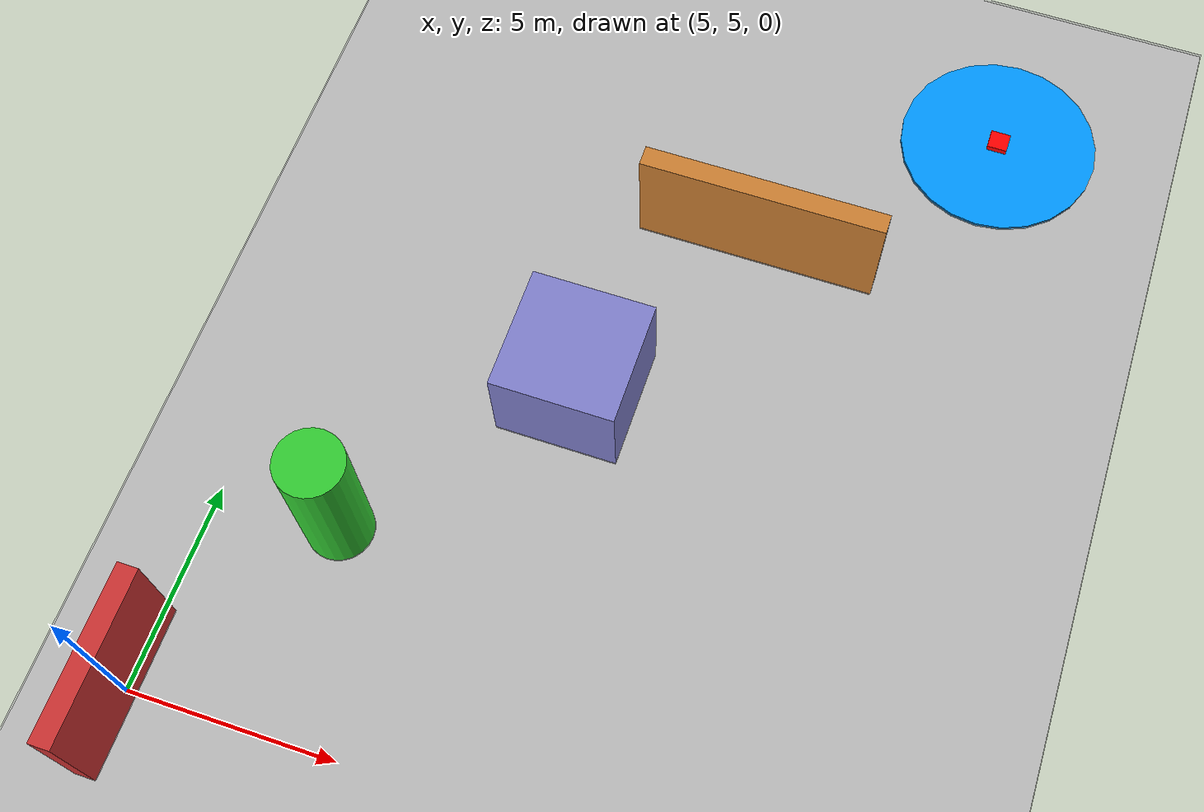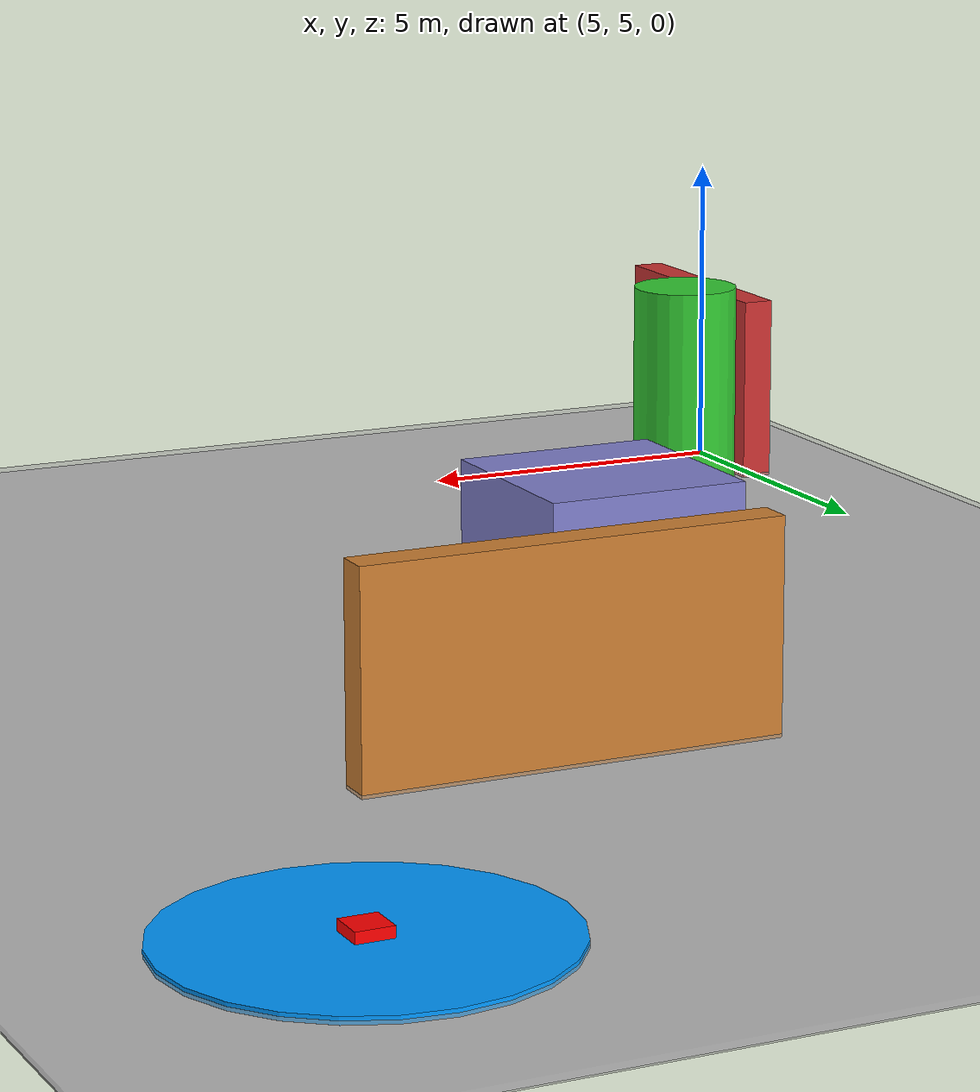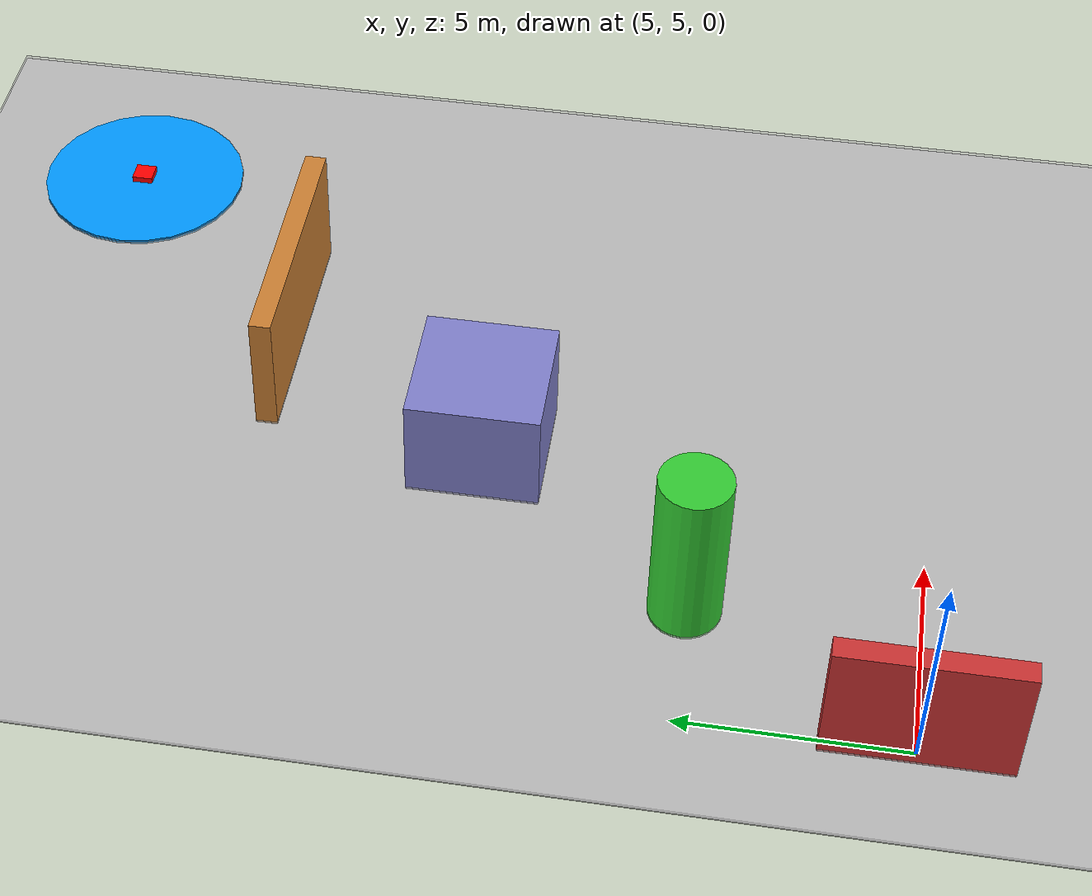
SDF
<?xml version="1.0" ?>
<sdf version="1.9">
  <world name="obstacle_world">

    <!-- Physics -->
    <physics name="1ms" type="ignored">
      <max_step_size>0.001</max_step_size>
      <real_time_factor>1.0</real_time_factor>
    </physics>

    <!-- Plugins -->
    <plugin filename="gz-sim-physics-system" name="gz::sim::systems::Physics"/>
    <plugin filename="gz-sim-user-commands-system" name="gz::sim::systems::UserCommands"/>
    <plugin filename="gz-sim-scene-broadcaster-system" name="gz::sim::systems::SceneBroadcaster"/>
    <plugin filename="gz-sim-imu-system" name="gz::sim::systems::Imu"/>
    <plugin filename="gz-sim-sensors-system" name="gz::sim::systems::Sensors">
      <render_engine>ogre2</render_engine>
    </plugin>

    <!-- Sun -->
    <light type="directional" name="sun">
      <cast_shadows>true</cast_shadows>
      <pose>0 0 10 0 0 0</pose>
      <diffuse>0.8 0.8 0.8 1</diffuse>
      <specular>0.2 0.2 0.2 1</specular>
      <attenuation>
        <range>1000</range>
        <constant>0.9</constant>
        <linear>0.01</linear>
        <quadratic>0.001</quadratic>
      </attenuation>
      <direction>-0.5 0.1 -0.9</direction>
    </light>

    <!-- Ground plane -->
    <model name="ground_plane">
      <static>true</static>
      <link name="link">
        <collision name="collision">
          <geometry>
            <plane>
              <normal>0 0 1</normal>
              <size>100 100</size>
            </plane>
          </geometry>
        </collision>
        <visual name="visual">
          <geometry>
            <plane>
              <normal>0 0 1</normal>
              <size>100 100</size>
            </plane>
          </geometry>
          <material>
            <ambient>0.8 0.8 0.8 1</ambient>
            <diffuse>0.8 0.8 0.8 1</diffuse>
            <specular>0.8 0.8 0.8 1</specular>
          </material>
        </visual>
      </link>
    </model>

    <!-- Grid visual -->
    <model name="grid">
      <static>true</static>
      <link name="link">
        <visual name="visual">
          <cast_shadows>false</cast_shadows>
          <geometry>
            <plane>
              <normal>0 0 1</normal>
              <size>100 100</size>
            </plane>
          </geometry>
          <material>
            <ambient>0.7 0.7 0.7 0.5</ambient>
            <diffuse>0.7 0.7 0.7 0.5</diffuse>
          </material>
        </visual>
      </link>
    </model>

    <!-- VẬT CẢN -->

    <!-- Vật cản 1: Tường đỏ -->
    <model name="wall_1">
      <pose>5 5 1.5 0 0 0</pose>
      <static>true</static>
      <link name="link">
        <collision name="collision">
          <geometry>
            <box>
              <size>0.5 4 3</size>
            </box>
          </geometry>
        </collision>
        <visual name="visual">
          <geometry>
            <box>
              <size>0.5 4 3</size>
            </box>
          </geometry>
          <material>
            <ambient>0.8 0.2 0.2 1</ambient>
            <diffuse>0.8 0.2 0.2 1</diffuse>
            <specular>0.5 0.5 0.5 1</specular>
          </material>
        </visual>
      </link>
    </model>

    <!-- Vật cản 2: Cột xanh lá -->
    <model name="pole_1">
      <pose>8 10 2 0 0 0</pose>
      <static>true</static>
      <link name="link">
        <collision name="collision">
          <geometry>
            <cylinder>
              <radius>0.8</radius>
              <length>4</length>
            </cylinder>
          </geometry>
        </collision>
        <visual name="visual">
          <geometry>
            <cylinder>
              <radius>0.8</radius>
              <length>4</length>
            </cylinder>
          </geometry>
          <material>
            <ambient>0.2 0.8 0.2 1</ambient>
            <diffuse>0.2 0.8 0.2 1</diffuse>
            <specular>0.5 0.5 0.5 1</specular>
          </material>
        </visual>
      </link>
    </model>

    <!-- Vật cản 3: Hộp xanh dương -->
    <model name="box_1">
      <pose>12 15 1.25 0 0 0</pose>
      <static>true</static>
      <link name="link">
        <collision name="collision">
          <geometry>
            <box>
              <size>3 3 2.5</size>
            </box>
          </geometry>
        </collision>
        <visual name="visual">
          <geometry>
            <box>
              <size>3 3 2.5</size>
            </box>
          </geometry>
          <material>
            <ambient>0.5 0.5 0.8 1</ambient>
            <diffuse>0.5 0.5 0.8 1</diffuse>
            <specular>0.5 0.5 0.5 1</specular>
          </material>
        </visual>
      </link>
    </model>

    <!-- Vật cản 4: Tường cam (xoay 90°) -->
    <model name="wall_2">
      <pose>15 20 1.5 0 0 1.57079632679</pose>
      <static>true</static>
      <link name="link">
        <collision name="collision">
          <geometry>
            <box>
              <size>0.5 6 3</size>
            </box>
          </geometry>
        </collision>
        <visual name="visual">
          <geometry>
            <box>
              <size>0.5 6 3</size>
            </box>
          </geometry>
          <material>
            <ambient>0.8 0.5 0.2 1</ambient>
            <diffuse>0.8 0.5 0.2 1</diffuse>
            <specular>0.5 0.5 0.5 1</specular>
          </material>
        </visual>
      </link>
    </model>

    <!-- ĐIỂM GIAO HÀNG -->

    <!-- Landing zone - Khối trụ xanh dương phát sáng -->
    <model name="delivery_zone">
      <pose>20 25 0.05 0 0 0</pose>
      <static>true</static>
      <link name="link">
        <visual name="visual">
          <geometry>
            <cylinder>
              <radius>2.5</radius>
              <length>0.1</length>
            </cylinder>
          </geometry>
          <material>
            <ambient>0 0.4 1 1</ambient>
            <diffuse>0 0.6 1 1</diffuse>
            <specular>1 1 1 1</specular>
            <emissive>0 0.3 0.8 1</emissive>
          </material>
        </visual>
        <collision name="collision">
          <geometry>
            <cylinder>
              <radius>2.5</radius>
              <length>0.1</length>
            </cylinder>
          </geometry>
        </collision>
      </link>
    </model>

    <!-- Điểm đánh dấu tâm (đỏ) -->
    <model name="center_marker">
      <pose>20 25 0.15 0 0 0</pose>
      <static>true</static>
      <link name="link">
        <visual name="visual">
          <geometry>
            <box>
              <size>0.5 0.5 0.2</size>
            </box>
          </geometry>
          <material>
            <ambient>1 0 0 1</ambient>
            <diffuse>1 0 0 1</diffuse>
            <emissive>0.5 0 0 1</emissive>
          </material>
        </visual>
      </link>
    </model>

  </world>
</sdf>
